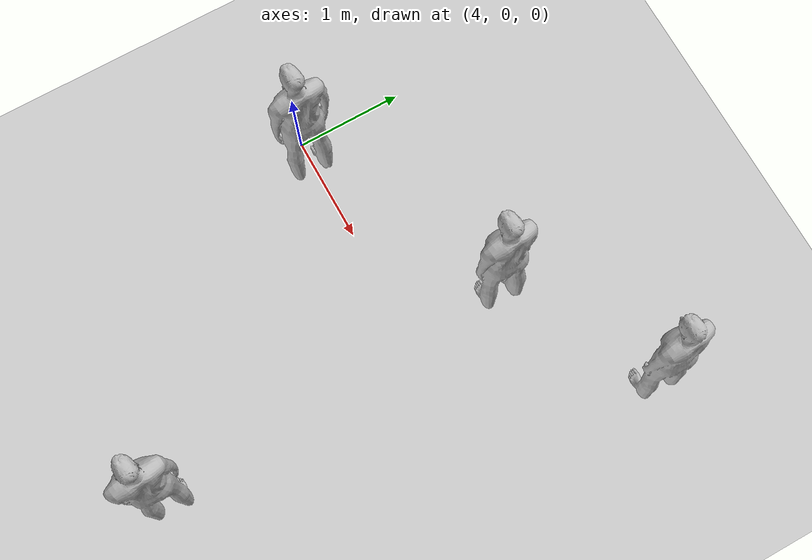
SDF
<sdf version="1.6">
 <world name="default">
  <light name="sun" type="directional">
   <pose>0 0 10 0 -0 0</pose>
   <diffuse>0.8 0.8 0.8 1</diffuse>
   <specular>0.2 0.2 0.2 1</specular>
   <attenuation>
    <range>1000</range>
    <constant>0.9</constant>
    <linear>0.01</linear>
    <quadratic>0.001</quadratic>
   </attenuation>
   <direction>-0.5 0.1 -0.9</direction>
  </light>
  <model name="ground_plane">
   <static>1</static>
   <link name="link">
    <collision name="collision">
     <geometry><plane><normal>0 0 1</normal><size>100 100</size></plane></geometry>
     <surface><friction><ode><mu>100</mu><mu2>50</mu2></ode></friction></surface>
    </collision>
    <visual name="visual">
     <cast_shadows>0</cast_shadows>
     <geometry><plane><normal>0 0 1</normal><size>100 100</size></plane></geometry>
     <material>
      <script><uri>file://media/materials/scripts/gazebo.material</uri><name>Gazebo/Grey</name></script>
     </material>
    </visual>
    <velocity_decay><linear>0</linear><angular>0</angular></velocity_decay>
   </link>
  </model>
  <physics name="default_physics" default="0" type="ode">
   <max_step_size>0.001</max_step_size>
   <real_time_factor>1</real_time_factor>
   <real_time_update_rate>1000</real_time_update_rate>
  </physics>
  <scene><ambient>0.4 0.4 0.4 1</ambient><background>0.7 0.7 0.7 1</background><shadows>1</shadows></scene>
  <spherical_coordinates>
   <surface_model>EARTH_WGS84</surface_model>
   <latitude_deg>0</latitude_deg>
   <longitude_deg>0</longitude_deg>
   <elevation>0</elevation>
   <heading_deg>0</heading_deg>
  </spherical_coordinates>
  <gravity>0 0 -9.8</gravity>
  <magnetic_field>6e-06 2.3e-05 -4.2e-05</magnetic_field>
  <atmosphere type="adiabatic"/>
  <model name="person_standing">
   <link name="link">
    <inertial>
     <pose>0 -0.1 0.95 0 -0 0</pose>
     <mass>80</mass>
     <inertia><ixx>24.88</ixx><ixy>0</ixy><ixz>0</ixz><iyy>25.73</iyy><iyz>0</iyz><izz>2.48</izz></inertia>
    </inertial>
    <collision name="bottom">
     <pose>0 -0.1 0.01 0 -0 0</pose>
     <geometry><box><size>0.5 0.35 0.02</size></box></geometry>
    </collision>
    <collision name="person">
     <pose>0 0 0.02 0.04 -0 0</pose>
     <geometry><mesh><uri>model://person_standing/meshes/standing.dae</uri></mesh></geometry>
    </collision>
    <visual name="visual">
     <pose>0 0 0.02 0.04 -0 0</pose>
     <geometry><mesh><uri>model://person_standing/meshes/standing.dae</uri></mesh></geometry>
    </visual>
   </link>
   <pose>4.29564 -0.018379 0 0 -1e-06 -1.5872</pose>
  </model>
  <model name="person_standing_clone">
   <link name="link">
    <inertial>
     <pose>0 -0.1 0.95 0 -0 0</pose>
     <mass>80</mass>
     <inertia><ixx>24.88</ixx><ixy>0</ixy><ixz>0</ixz><iyy>25.73</iyy><iyz>0</iyz><izz>2.48</izz></inertia>
    </inertial>
    <collision name="bottom">
     <pose>0 -0.1 0.01 0 -0 0</pose>
     <geometry><box><size>0.5 0.35 0.02</size></box></geometry>
    </collision>
    <collision name="person">
     <pose>0 0 0.02 0.04 -0 0</pose>
     <geometry><mesh><uri>model://person_standing/meshes/standing.dae</uri></mesh></geometry>
    </collision>
    <visual name="visual">
     <pose>0 0 0.02 0.04 -0 0</pose>
     <geometry><mesh><uri>model://person_standing/meshes/standing.dae</uri></mesh></geometry>
    </visual>
   </link>
   <pose>7.55423 1.65519 0 0 -1e-06 -1.58666</pose>
  </model>
  <model name="person_standing_clone_clone">
   <link name="link">
    <inertial>
     <pose>0 -0.1 0.95 0 -0 0</pose>
     <mass>80</mass>
     <inertia><ixx>24.88</ixx><ixy>0</ixy><ixz>0</ixz><iyy>25.73</iyy><iyz>0</iyz><izz>2.48</izz></inertia>
    </inertial>
    <collision name="bottom">
     <pose>0 -0.1 0.01 0 -0 0</pose>
     <geometry><box><size>0.5 0.35 0.02</size></box></geometry>
    </collision>
    <collision name="person">
     <pose>0 0 0.02 0.04 -0 0</pose>
     <geometry><mesh><uri>model://person_standing/meshes/standing.dae</uri></mesh></geometry>
    </collision>
    <visual name="visual">
     <pose>0 0 0.02 0.04 -0 0</pose>
     <geometry><mesh><uri>model://person_standing/meshes/standing.dae</uri></mesh></geometry>
    </visual>
   </link>
   <pose>6.18714 0.875787 0 0 1e-06 -1.58767</pose>
  </model>
  <model name="person_standing_clone_clone_clone">
   <link name="link">
    <inertial>
     <pose>0 -0.1 0.95 0 -0 0</pose>
     <mass>80</mass>
     <inertia><ixx>24.88</ixx><ixy>0</ixy><ixz>0</ixz><iyy>25.73</iyy><iyz>0</iyz><izz>2.48</izz></inertia>
    </inertial>
    <collision name="bottom">
     <pose>0 -0.1 0.01 0 -0 0</pose>
     <geometry><box><size>0.5 0.35 0.02</size></box></geometry>
    </collision>
    <collision name="person">
     <pose>0 0 0.02 0.04 -0 0</pose>
     <geometry><mesh><uri>model://person_standing/meshes/standing.dae</uri></mesh></geometry>
    </collision>
    <visual name="visual">
     <pose>0 0 0.02 0.04 -0 0</pose>
     <geometry><mesh><uri>model://person_standing/meshes/standing.dae</uri></mesh></geometry>
    </visual>
   </link>
   <pose>6.42683 -2.5075 0 1e-06 1e-06 -1.58651</pose>
  </model>
 </world>
</sdf>
